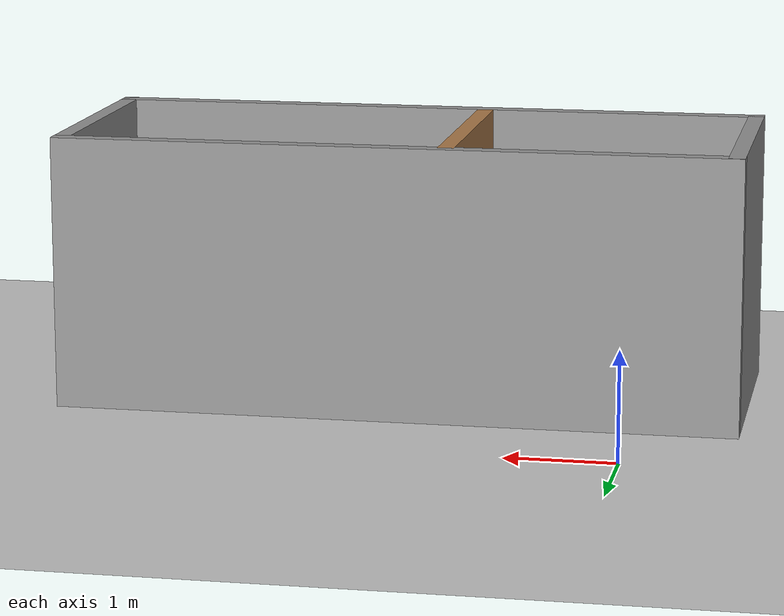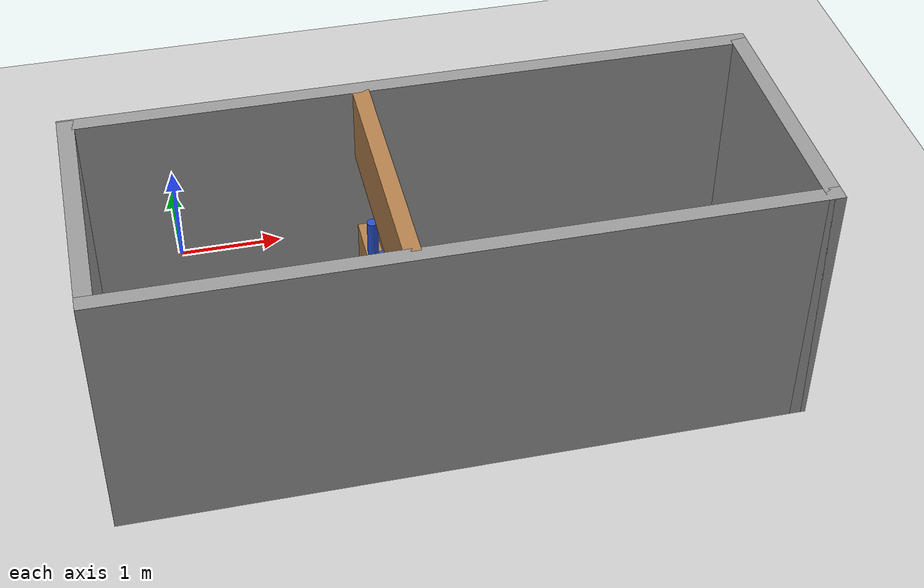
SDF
<sdf version="1.6">
 <world name="default">
  <model name="ground_plane">
   <static>1</static>
   <link name="link">
    <collision name="collision">
     <geometry><plane><normal>0 0 1</normal><size>100 100</size></plane></geometry>
     <surface><friction><ode><mu>100</mu><mu2>50</mu2></ode></friction></surface>
    </collision>
    <visual name="visual">
     <cast_shadows>0</cast_shadows>
     <geometry><plane><normal>0 0 1</normal><size>100 100</size></plane></geometry>
     <material>
      <script><uri>file://media/materials/scripts/gazebo.material</uri><name>Gazebo/Grey</name></script>
     </material>
    </visual>
   </link>
  </model>
  <light name="sun" type="directional">
   <pose>0 0 1000 0 -0 0</pose>
   <diffuse>0.8 0.8 0.8 1</diffuse>
   <specular>0.2 0.2 0.2 1</specular>
   <attenuation>
    <range>1000</range>
    <constant>0.9</constant>
    <linear>0.01</linear>
    <quadratic>0.001</quadratic>
   </attenuation>
   <direction>-0.5 0.1 -0.9</direction>
  </light>
  <gravity>0 0 -9.8</gravity>
  <magnetic_field>6e-06 2.3e-05 -4.2e-05</magnetic_field>
  <atmosphere type="adiabatic"/>
  <plugin name="ros_interface_plugin" filename="librotors_gazebo_ros_interface_plugin.so"/>
  <physics name="default_physics" default="0" type="ode">
   <ode>
    <solver>
     <type>quick</type>
     <iters>1000</iters>
     <sor>1.3</sor>
     <use_dynamic_moi_rescaling>0</use_dynamic_moi_rescaling>
    </solver>
    <constraints>
     <cfm>0</cfm>
     <erp>0.2</erp>
     <contact_max_correcting_vel>100</contact_max_correcting_vel>
     <contact_surface_layer>0.001</contact_surface_layer>
    </constraints>
   </ode>
   <max_step_size>0.01</max_step_size>
   <real_time_factor>1</real_time_factor>
   <real_time_update_rate>100</real_time_update_rate>
  </physics>
  <scene><ambient>0.4 0.4 0.4 1</ambient><background>0.7 0.7 0.7 1</background><shadows>1</shadows></scene>
  <spherical_coordinates>
   <surface_model>EARTH_WGS84</surface_model>
   <latitude_deg>0</latitude_deg>
   <longitude_deg>0</longitude_deg>
   <elevation>0</elevation>
   <heading_deg>0</heading_deg>
  </spherical_coordinates>
  <model name="iros20212">
   <pose>2.17307 -1.07667 0 0 -0 0</pose>
   <link name="Wall_17">
    <collision name="Wall_17_Collision">
     <geometry><box><size>2.25 0.15 0.7</size></box></geometry>
     <pose>0 0 2.15 0 -0 0</pose>
    </collision>
    <visual name="Wall_17_Visual">
     <pose>0 0 2.15 0 -0 0</pose>
     <geometry><box><size>2.25 0.15 0.7</size></box></geometry>
     <material>
      <script><uri>file://media/materials/scripts/gazebo.material</uri><name>Gazebo/Wood</name></script>
      <ambient>1 1 1 1</ambient>
     </material>
     <meta><layer>0</layer></meta>
    </visual>
    <pose>-0.477988 -1.1348 0 0 -0 1.5708</pose>
   </link>
   <link name="Wall_17_lower">
    <collision name="Wall_17_lower_Collision">
     <geometry><box><size>2.25 0.15 1</size></box></geometry>
     <pose>0 0 0.5 0 -0 0</pose>
    </collision>
    <visual name="Wall_17_lower_Visual">
     <pose>0 0 0.5 0 -0 0</pose>
     <geometry><box><size>2.25 0.15 1</size></box></geometry>
     <material>
      <script><uri>file://media/materials/scripts/gazebo.material</uri><name>Gazebo/Wood</name></script>
      <ambient>1 1 1 1</ambient>
     </material>
     <meta><layer>0</layer></meta>
    </visual>
    <pose>-0.477988 -1.1348 0 0 -0 1.5708</pose>
   </link>
   <link name="Wall_2">
    <collision name="Wall_2_Collision">
     <geometry><box><size>6.25 0.15 2.5</size></box></geometry>
     <pose>0 0 1.25 0 -0 0</pose>
    </collision>
    <visual name="Wall_2_Visual">
     <pose>0 0 1.25 0 -0 0</pose>
     <geometry><box><size>6.25 0.15 2.5</size></box></geometry>
     <material>
      <script><uri>file://media/materials/scripts/gazebo.material</uri><name>Gazebo/Grey</name></script>
      <ambient>1 1 1 1</ambient>
     </material>
     <meta><layer>0</layer></meta>
    </visual>
    <pose>0 -2.3 0 0 -0 0</pose>
   </link>
   <link name="Wall_3">
    <collision name="Wall_3_Collision">
     <geometry><box><size>2.45 0.15 2.5</size></box></geometry>
     <pose>0 0 1.25 0 -0 0</pose>
    </collision>
    <visual name="Wall_3_Visual">
     <pose>0 0 1.25 0 -0 0</pose>
     <geometry><box><size>2.45 0.15 2.5</size></box></geometry>
     <material>
      <script><uri>file://media/materials/scripts/gazebo.material</uri><name>Gazebo/Grey</name></script>
      <ambient>1 1 1 1</ambient>
     </material>
     <meta><layer>0</layer></meta>
    </visual>
    <pose>3.05 -1.15 0 0 -0 1.5708</pose>
   </link>
   <link name="Wall_5">
    <collision name="Wall_5_Collision">
     <geometry><box><size>2.45 0.15 2.5</size></box></geometry>
     <pose>0 0 1.25 0 -0 0</pose>
    </collision>
    <visual name="Wall_5_Visual">
     <pose>0 0 1.25 0 -0 0</pose>
     <geometry><box><size>2.45 0.15 2.5</size></box></geometry>
     <material>
      <script><uri>file://media/materials/scripts/gazebo.material</uri><name>Gazebo/Grey</name></script>
      <ambient>1 1 1 1</ambient>
     </material>
     <meta><layer>0</layer></meta>
    </visual>
    <pose>-3.05 -1.15 0 0 0 -1.5708</pose>
   </link>
   <link name="Wall_9">
    <collision name="Wall_9_Collision">
     <geometry><box><size>6.25 0.15 2.5</size></box></geometry>
     <pose>0 0 1.25 0 -0 0</pose>
    </collision>
    <visual name="Wall_9_Visual">
     <pose>0 0 1.25 0 -0 0</pose>
     <geometry><box><size>6.25 0.15 2.5</size></box></geometry>
     <material>
      <script><uri>file://media/materials/scripts/gazebo.material</uri><name>Gazebo/Grey</name></script>
      <ambient>1 1 1 1</ambient>
     </material>
     <meta><layer>0</layer></meta>
    </visual>
    <pose>0 0.015197 0 0 -0 0</pose>
   </link>
   <static>1</static>
  </model>
  <model name="cylinder">
   <static>1</static>
   <pose>1.68866 -2.05716 0.99466 0 -0 0</pose>
   <link name="link">
    <pose>0 0 0.2 0 -0 0</pose>
    <collision name="collision">
     <geometry><cylinder><radius>0.05</radius><length>0.4</length></cylinder></geometry>
    </collision>
    <visual name="visual">
     <geometry><cylinder><radius>0.05</radius><length>0.4</length></cylinder></geometry>
     <material>
      <script><name>Gazebo/Blue</name><uri>file://media/materials/scripts/gazebo.material</uri></script>
     </material>
    </visual>
   </link>
  </model>
  <model name="cylinder_clone">
   <static>1</static>
   <pose>1.67808 -1.60433 0.99466 0 -0 0</pose>
   <link name="link">
    <pose>0 0 0.2 0 -0 0</pose>
    <collision name="collision">
     <geometry><cylinder><radius>0.05</radius><length>0.4</length></cylinder></geometry>
    </collision>
    <visual name="visual">
     <geometry><cylinder><radius>0.05</radius><length>0.4</length></cylinder></geometry>
     <material>
      <script><name>Gazebo/Blue</name><uri>file://media/materials/scripts/gazebo.material</uri></script>
     </material>
    </visual>
   </link>
  </model>
  <model name="cylinder_clone_0">
   <static>1</static>
   <pose>1.68262 -2.49991 0.99466 0 -0 0</pose>
   <link name="link">
    <pose>0 0 0.2 0 -0 0</pose>
    <collision name="collision">
     <geometry><cylinder><radius>0.05</radius><length>0.4</length></cylinder></geometry>
    </collision>
    <visual name="visual">
     <geometry><cylinder><radius>0.05</radius><length>0.4</length></cylinder></geometry>
     <material>
      <script><name>Gazebo/Blue</name><uri>file://media/materials/scripts/gazebo.material</uri></script>
     </material>
    </visual>
   </link>
  </model>
  <model name="cylinder_clone_1">
   <static>1</static>
   <pose>1.68538 -2.92885 0.99466 0 -0 0</pose>
   <link name="link">
    <pose>0 0 0.2 0 -0 0</pose>
    <collision name="collision">
     <geometry><cylinder><radius>0.05</radius><length>0.4</length></cylinder></geometry>
    </collision>
    <visual name="visual">
     <geometry><cylinder><radius>0.05</radius><length>0.4</length></cylinder></geometry>
     <material>
      <script><name>Gazebo/Blue</name><uri>file://media/materials/scripts/gazebo.material</uri></script>
     </material>
    </visual>
   </link>
  </model>
 </world>
</sdf>
